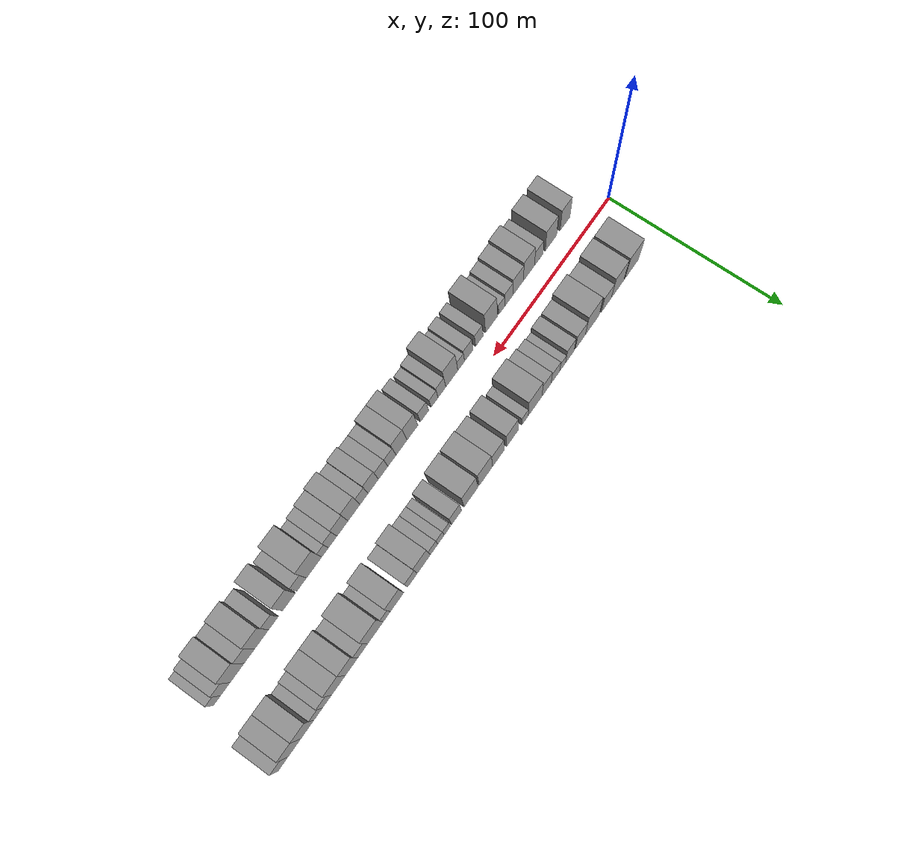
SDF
<sdf version="1.6">
 <world name="default">
  <scene>
   <sky><clouds><speed>12</speed></clouds></sky>
   <ambient>0.4 0.4 0.4 1</ambient>
   <background>0.7 0.7 0.7 1</background>
   <shadows>1</shadows>
  </scene>
  <gravity>0 0 -9.8066</gravity>
  <magnetic_field>6e-06 2.3e-05 -4.2e-05</magnetic_field>
  <physics default="0" name="default_physics" type="ode">
   <ode>
    <solver>
     <type>quick</type>
     <iters>10</iters>
     <sor>1.0</sor>
     <use_dynamic_moi_rescaling>0</use_dynamic_moi_rescaling>
    </solver>
    <constraints>
     <cfm>0</cfm>
     <erp>0.2</erp>
     <contact_max_correcting_vel>100</contact_max_correcting_vel>
     <contact_surface_layer>0.001</contact_surface_layer>
    </constraints>
   </ode>
   <max_step_size>0.004</max_step_size>
   <real_time_factor>1</real_time_factor>
   <real_time_update_rate>250</real_time_update_rate>
  </physics>
  <light name="sun" type="directional">
   <pose>0 0 10 0 0 0</pose>
   <diffuse>0.8 0.8 0.8 1</diffuse>
   <specular>0.2 0.2 0.2 1</specular>
   <attenuation>
    <range>1000</range>
    <constant>0.9</constant>
    <linear>0.01</linear>
    <quadratic>0.001</quadratic>
   </attenuation>
   <direction>-0.5 0.1 -0.9</direction>
  </light>
  <model name="building_1">
   <static>1</static>
   <pose>25.9785 20.0000 0 0.000000 0.000000 1.570796</pose>
   <link name="link">
    <pose>0 0 12.00 0 0 0</pose>
    <collision name="collision"><geometry><box><size>20.0000 11.9569 24.0000</size></box></geometry></collision>
    <visual name="visual">
     <cast_shadows>0</cast_shadows>
     <geometry><box><size>20.0000 11.9569 24.0000</size></box></geometry>
     <material>
      <script>
       <uri>model://grey_wall/materials/scripts</uri>
       <uri>model://grey_wall/materials/textures</uri>
       <name>vrc/grey_wall</name>
      </script>
     </material>
    </visual>
   </link>
  </model>
  <model name="building_2">
   <static>1</static>
   <pose>38.5101 20.0000 0 0.000000 0.000000 1.570796</pose>
   <link name="link">
    <pose>0 0 12.00 0 0 0</pose>
    <collision name="collision"><geometry><box><size>20.0000 11.1064 24.0000</size></box></geometry></collision>
    <visual name="visual">
     <cast_shadows>0</cast_shadows>
     <geometry><box><size>20.0000 11.1064 24.0000</size></box></geometry>
     <material>
      <script>
       <uri>model://grey_wall/materials/scripts</uri>
       <uri>model://grey_wall/materials/textures</uri>
       <name>vrc/grey_wall</name>
      </script>
     </material>
    </visual>
   </link>
  </model>
  <model name="building_3">
   <static>1</static>
   <pose>48.4503 20.0000 0 0.000000 0.000000 1.570796</pose>
   <link name="link">
    <pose>0 0 9.00 0 0 0</pose>
    <collision name="collision"><geometry><box><size>20.0000 8.7741 18.0000</size></box></geometry></collision>
    <visual name="visual">
     <cast_shadows>0</cast_shadows>
     <geometry><box><size>20.0000 8.7741 18.0000</size></box></geometry>
     <material>
      <script>
       <uri>model://grey_wall/materials/scripts</uri>
       <uri>model://grey_wall/materials/textures</uri>
       <name>vrc/grey_wall</name>
      </script>
     </material>
    </visual>
   </link>
  </model>
  <model name="building_4">
   <static>1</static>
   <pose>60.7987 20.0000 0 0.000000 0.000000 1.570796</pose>
   <link name="link">
    <pose>0 0 12.00 0 0 0</pose>
    <collision name="collision"><geometry><box><size>20.0000 11.9227 24.0000</size></box></geometry></collision>
    <visual name="visual">
     <cast_shadows>0</cast_shadows>
     <geometry><box><size>20.0000 11.9227 24.0000</size></box></geometry>
     <material>
      <script>
       <uri>model://grey_wall/materials/scripts</uri>
       <uri>model://grey_wall/materials/textures</uri>
       <name>vrc/grey_wall</name>
      </script>
     </material>
    </visual>
   </link>
  </model>
  <model name="building_5">
   <static>1</static>
   <pose>71.1130 20.0000 0 0.000000 0.000000 1.570796</pose>
   <link name="link">
    <pose>0 0 9.00 0 0 0</pose>
    <collision name="collision"><geometry><box><size>20.0000 8.7057 18.0000</size></box></geometry></collision>
    <visual name="visual">
     <cast_shadows>0</cast_shadows>
     <geometry><box><size>20.0000 8.7057 18.0000</size></box></geometry>
     <material>
      <script>
       <uri>model://grey_wall/materials/scripts</uri>
       <uri>model://grey_wall/materials/textures</uri>
       <name>vrc/grey_wall</name>
      </script>
     </material>
    </visual>
   </link>
  </model>
  <model name="building_6">
   <static>1</static>
   <pose>80.1181 20.0000 0 0.000000 0.000000 1.570796</pose>
   <link name="link">
    <pose>0 0 9.00 0 0 0</pose>
    <collision name="collision"><geometry><box><size>20.0000 7.3044 18.0000</size></box></geometry></collision>
    <visual name="visual">
     <cast_shadows>0</cast_shadows>
     <geometry><box><size>20.0000 7.3044 18.0000</size></box></geometry>
     <material>
      <script>
       <uri>model://grey_wall/materials/scripts</uri>
       <uri>model://grey_wall/materials/textures</uri>
       <name>vrc/grey_wall</name>
      </script>
     </material>
    </visual>
   </link>
  </model>
  <model name="building_7">
   <static>1</static>
   <pose>86.2815 20.0000 0 0.000000 0.000000 1.570796</pose>
   <link name="link">
    <pose>0 0 6.00 0 0 0</pose>
    <collision name="collision"><geometry><box><size>20.0000 5.0225 12.0000</size></box></geometry></collision>
    <visual name="visual">
     <cast_shadows>0</cast_shadows>
     <geometry><box><size>20.0000 5.0225 12.0000</size></box></geometry>
     <material>
      <script>
       <uri>model://grey_wall/materials/scripts</uri>
       <uri>model://grey_wall/materials/textures</uri>
       <name>vrc/grey_wall</name>
      </script>
     </material>
    </visual>
   </link>
  </model>
  <model name="building_8">
   <static>1</static>
   <pose>92.3983 20.0000 0 0.000000 0.000000 1.570796</pose>
   <link name="link">
    <pose>0 0 7.50 0 0 0</pose>
    <collision name="collision"><geometry><box><size>20.0000 7.2111 15.0000</size></box></geometry></collision>
    <visual name="visual">
     <cast_shadows>0</cast_shadows>
     <geometry><box><size>20.0000 7.2111 15.0000</size></box></geometry>
     <material>
      <script>
       <uri>model://grey_wall/materials/scripts</uri>
       <uri>model://grey_wall/materials/textures</uri>
       <name>vrc/grey_wall</name>
      </script>
     </material>
    </visual>
   </link>
  </model>
  <model name="building_9">
   <static>1</static>
   <pose>99.8922 20.0000 0 0.000000 0.000000 1.570796</pose>
   <link name="link">
    <pose>0 0 9.00 0 0 0</pose>
    <collision name="collision"><geometry><box><size>20.0000 7.7767 18.0000</size></box></geometry></collision>
    <visual name="visual">
     <cast_shadows>0</cast_shadows>
     <geometry><box><size>20.0000 7.7767 18.0000</size></box></geometry>
     <material>
      <script>
       <uri>model://grey_wall/materials/scripts</uri>
       <uri>model://grey_wall/materials/textures</uri>
       <name>vrc/grey_wall</name>
      </script>
     </material>
    </visual>
   </link>
  </model>
  <model name="building_10">
   <static>1</static>
   <pose>109.4819 20.0000 0 0.000000 0.000000 1.570796</pose>
   <link name="link">
    <pose>0 0 12.00 0 0 0</pose>
    <collision name="collision"><geometry><box><size>20.0000 11.4029 24.0000</size></box></geometry></collision>
    <visual name="visual">
     <cast_shadows>0</cast_shadows>
     <geometry><box><size>20.0000 11.4029 24.0000</size></box></geometry>
     <material>
      <script>
       <uri>model://grey_wall/materials/scripts</uri>
       <uri>model://grey_wall/materials/textures</uri>
       <name>vrc/grey_wall</name>
      </script>
     </material>
    </visual>
   </link>
  </model>
  <model name="building_11">
   <static>1</static>
   <pose>117.8091 20.0000 0 0.000000 0.000000 1.570796</pose>
   <link name="link">
    <pose>0 0 6.00 0 0 0</pose>
    <collision name="collision"><geometry><box><size>20.0000 5.2514 12.0000</size></box></geometry></collision>
    <visual name="visual">
     <cast_shadows>0</cast_shadows>
     <geometry><box><size>20.0000 5.2514 12.0000</size></box></geometry>
     <material>
      <script>
       <uri>model://grey_wall/materials/scripts</uri>
       <uri>model://grey_wall/materials/textures</uri>
       <name>vrc/grey_wall</name>
      </script>
     </material>
    </visual>
   </link>
  </model>
  <model name="building_12">
   <static>1</static>
   <pose>128.1801 20.0000 0 0.000000 0.000000 1.570796</pose>
   <link name="link">
    <pose>0 0 10.50 0 0 0</pose>
    <collision name="collision"><geometry><box><size>20.0000 9.4906 21.0000</size></box></geometry></collision>
    <visual name="visual">
     <cast_shadows>0</cast_shadows>
     <geometry><box><size>20.0000 9.4906 21.0000</size></box></geometry>
     <material>
      <script>
       <uri>model://grey_wall/materials/scripts</uri>
       <uri>model://grey_wall/materials/textures</uri>
       <name>vrc/grey_wall</name>
      </script>
     </material>
    </visual>
   </link>
  </model>
  <model name="building_13">
   <static>1</static>
   <pose>139.6818 20.0000 0 0.000000 0.000000 1.570796</pose>
   <link name="link">
    <pose>0 0 10.50 0 0 0</pose>
    <collision name="collision"><geometry><box><size>20.0000 9.5127 21.0000</size></box></geometry></collision>
    <visual name="visual">
     <cast_shadows>0</cast_shadows>
     <geometry><box><size>20.0000 9.5127 21.0000</size></box></geometry>
     <material>
      <script>
       <uri>model://grey_wall/materials/scripts</uri>
       <uri>model://grey_wall/materials/textures</uri>
       <name>vrc/grey_wall</name>
      </script>
     </material>
    </visual>
   </link>
  </model>
  <model name="building_14">
   <static>1</static>
   <pose>149.8260 20.0000 0 0.000000 0.000000 1.570796</pose>
   <link name="link">
    <pose>0 0 12.00 0 0 0</pose>
    <collision name="collision"><geometry><box><size>20.0000 10.7758 24.0000</size></box></geometry></collision>
    <visual name="visual">
     <cast_shadows>0</cast_shadows>
     <geometry><box><size>20.0000 10.7758 24.0000</size></box></geometry>
     <material>
      <script>
       <uri>model://grey_wall/materials/scripts</uri>
       <uri>model://grey_wall/materials/textures</uri>
       <name>vrc/grey_wall</name>
      </script>
     </material>
    </visual>
   </link>
  </model>
  <model name="building_15">
   <static>1</static>
   <pose>161.7693 20.0000 0 0.000000 0.000000 1.570796</pose>
   <link name="link">
    <pose>0 0 12.00 0 0 0</pose>
    <collision name="collision"><geometry><box><size>20.0000 11.1109 24.0000</size></box></geometry></collision>
    <visual name="visual">
     <cast_shadows>0</cast_shadows>
     <geometry><box><size>20.0000 11.1109 24.0000</size></box></geometry>
     <material>
      <script>
       <uri>model://grey_wall/materials/scripts</uri>
       <uri>model://grey_wall/materials/textures</uri>
       <name>vrc/grey_wall</name>
      </script>
     </material>
    </visual>
   </link>
  </model>
  <model name="building_16">
   <static>1</static>
   <pose>173.2774 20.0000 0 0.000000 0.000000 1.570796</pose>
   <link name="link">
    <pose>0 0 9.00 0 0 0</pose>
    <collision name="collision"><geometry><box><size>20.0000 7.9053 18.0000</size></box></geometry></collision>
    <visual name="visual">
     <cast_shadows>0</cast_shadows>
     <geometry><box><size>20.0000 7.9053 18.0000</size></box></geometry>
     <material>
      <script>
       <uri>model://grey_wall/materials/scripts</uri>
       <uri>model://grey_wall/materials/textures</uri>
       <name>vrc/grey_wall</name>
      </script>
     </material>
    </visual>
   </link>
  </model>
  <model name="building_17">
   <static>1</static>
   <pose>180.6325 20.0000 0 0.000000 0.000000 1.570796</pose>
   <link name="link">
    <pose>0 0 6.00 0 0 0</pose>
    <collision name="collision"><geometry><box><size>20.0000 4.8050 12.0000</size></box></geometry></collision>
    <visual name="visual">
     <cast_shadows>0</cast_shadows>
     <geometry><box><size>20.0000 4.8050 12.0000</size></box></geometry>
     <material>
      <script>
       <uri>model://grey_wall/materials/scripts</uri>
       <uri>model://grey_wall/materials/textures</uri>
       <name>vrc/grey_wall</name>
      </script>
     </material>
    </visual>
   </link>
  </model>
  <model name="building_18">
   <static>1</static>
   <pose>185.5237 20.0000 0 0.000000 0.000000 1.570796</pose>
   <link name="link">
    <pose>0 0 6.00 0 0 0</pose>
    <collision name="collision"><geometry><box><size>20.0000 4.9772 12.0000</size></box></geometry></collision>
    <visual name="visual">
     <cast_shadows>0</cast_shadows>
     <geometry><box><size>20.0000 4.9772 12.0000</size></box></geometry>
     <material>
      <script>
       <uri>model://grey_wall/materials/scripts</uri>
       <uri>model://grey_wall/materials/textures</uri>
       <name>vrc/grey_wall</name>
      </script>
     </material>
    </visual>
   </link>
  </model>
  <model name="building_19">
   <static>1</static>
   <pose>190.9537 20.0000 0 0.000000 0.000000 1.570796</pose>
   <link name="link">
    <pose>0 0 6.00 0 0 0</pose>
    <collision name="collision"><geometry><box><size>20.0000 5.8828 12.0000</size></box></geometry></collision>
    <visual name="visual">
     <cast_shadows>0</cast_shadows>
     <geometry><box><size>20.0000 5.8828 12.0000</size></box></geometry>
     <material>
      <script>
       <uri>model://grey_wall/materials/scripts</uri>
       <uri>model://grey_wall/materials/textures</uri>
       <name>vrc/grey_wall</name>
      </script>
     </material>
    </visual>
   </link>
  </model>
  <model name="building_20">
   <static>1</static>
   <pose>198.9248 20.0000 0 0.000000 0.000000 1.570796</pose>
   <link name="link">
    <pose>0 0 10.50 0 0 0</pose>
    <collision name="collision"><geometry><box><size>20.0000 10.0593 21.0000</size></box></geometry></collision>
    <visual name="visual">
     <cast_shadows>0</cast_shadows>
     <geometry><box><size>20.0000 10.0593 21.0000</size></box></geometry>
     <material>
      <script>
       <uri>model://grey_wall/materials/scripts</uri>
       <uri>model://grey_wall/materials/textures</uri>
       <name>vrc/grey_wall</name>
      </script>
     </material>
    </visual>
   </link>
  </model>
  <model name="building_21">
   <static>1</static>
   <pose>207.6356 20.0000 0 0.000000 0.000000 1.570796</pose>
   <link name="link">
    <pose>0 0 7.50 0 0 0</pose>
    <collision name="collision"><geometry><box><size>20.0000 7.3625 15.0000</size></box></geometry></collision>
    <visual name="visual">
     <cast_shadows>0</cast_shadows>
     <geometry><box><size>20.0000 7.3625 15.0000</size></box></geometry>
     <material>
      <script>
       <uri>model://grey_wall/materials/scripts</uri>
       <uri>model://grey_wall/materials/textures</uri>
       <name>vrc/grey_wall</name>
      </script>
     </material>
    </visual>
   </link>
  </model>
  <model name="building_22">
   <static>1</static>
   <pose>219.4383 20.0000 0 0.000000 0.000000 1.570796</pose>
   <link name="link">
    <pose>0 0 10.50 0 0 0</pose>
    <collision name="collision"><geometry><box><size>20.0000 10.2429 21.0000</size></box></geometry></collision>
    <visual name="visual">
     <cast_shadows>0</cast_shadows>
     <geometry><box><size>20.0000 10.2429 21.0000</size></box></geometry>
     <material>
      <script>
       <uri>model://grey_wall/materials/scripts</uri>
       <uri>model://grey_wall/materials/textures</uri>
       <name>vrc/grey_wall</name>
      </script>
     </material>
    </visual>
   </link>
  </model>
  <model name="building_23">
   <static>1</static>
   <pose>227.2261 20.0000 0 0.000000 0.000000 1.570796</pose>
   <link name="link">
    <pose>0 0 6.00 0 0 0</pose>
    <collision name="collision"><geometry><box><size>20.0000 5.3326 12.0000</size></box></geometry></collision>
    <visual name="visual">
     <cast_shadows>0</cast_shadows>
     <geometry><box><size>20.0000 5.3326 12.0000</size></box></geometry>
     <material>
      <script>
       <uri>model://grey_wall/materials/scripts</uri>
       <uri>model://grey_wall/materials/textures</uri>
       <name>vrc/grey_wall</name>
      </script>
     </material>
    </visual>
   </link>
  </model>
  <model name="building_24">
   <static>1</static>
   <pose>235.7231 20.0000 0 0.000000 0.000000 1.570796</pose>
   <link name="link">
    <pose>0 0 12.00 0 0 0</pose>
    <collision name="collision"><geometry><box><size>20.0000 11.6614 24.0000</size></box></geometry></collision>
    <visual name="visual">
     <cast_shadows>0</cast_shadows>
     <geometry><box><size>20.0000 11.6614 24.0000</size></box></geometry>
     <material>
      <script>
       <uri>model://grey_wall/materials/scripts</uri>
       <uri>model://grey_wall/materials/textures</uri>
       <name>vrc/grey_wall</name>
      </script>
     </material>
    </visual>
   </link>
  </model>
  <model name="building_25">
   <static>1</static>
   <pose>245.1435 20.0000 0 0.000000 0.000000 1.570796</pose>
   <link name="link">
    <pose>0 0 7.50 0 0 0</pose>
    <collision name="collision"><geometry><box><size>20.0000 7.1794 15.0000</size></box></geometry></collision>
    <visual name="visual">
     <cast_shadows>0</cast_shadows>
     <geometry><box><size>20.0000 7.1794 15.0000</size></box></geometry>
     <material>
      <script>
       <uri>model://grey_wall/materials/scripts</uri>
       <uri>model://grey_wall/materials/textures</uri>
       <name>vrc/grey_wall</name>
      </script>
     </material>
    </visual>
   </link>
  </model>
  <model name="building_26">
   <static>1</static>
   <pose>253.4254 20.0000 0 0.000000 0.000000 1.570796</pose>
   <link name="link">
    <pose>0 0 10.50 0 0 0</pose>
    <collision name="collision"><geometry><box><size>20.0000 9.3844 21.0000</size></box></geometry></collision>
    <visual name="visual">
     <cast_shadows>0</cast_shadows>
     <geometry><box><size>20.0000 9.3844 21.0000</size></box></geometry>
     <material>
      <script>
       <uri>model://grey_wall/materials/scripts</uri>
       <uri>model://grey_wall/materials/textures</uri>
       <name>vrc/grey_wall</name>
      </script>
     </material>
    </visual>
   </link>
  </model>
  <model name="building_27">
   <static>1</static>
   <pose>263.1952 20.0000 0 0.000000 0.000000 1.570796</pose>
   <link name="link">
    <pose>0 0 10.50 0 0 0</pose>
    <collision name="collision"><geometry><box><size>20.0000 10.1553 21.0000</size></box></geometry></collision>
    <visual name="visual">
     <cast_shadows>0</cast_shadows>
     <geometry><box><size>20.0000 10.1553 21.0000</size></box></geometry>
     <material>
      <script>
       <uri>model://grey_wall/materials/scripts</uri>
       <uri>model://grey_wall/materials/textures</uri>
       <name>vrc/grey_wall</name>
      </script>
     </material>
    </visual>
   </link>
  </model>
  <model name="building_28">
   <static>1</static>
   <pose>271.5869 20.0000 0 0.000000 0.000000 1.570796</pose>
   <link name="link">
    <pose>0 0 7.50 0 0 0</pose>
    <collision name="collision"><geometry><box><size>20.0000 6.6281 15.0000</size></box></geometry></collision>
    <visual name="visual">
     <cast_shadows>0</cast_shadows>
     <geometry><box><size>20.0000 6.6281 15.0000</size></box></geometry>
     <material>
      <script>
       <uri>model://grey_wall/materials/scripts</uri>
       <uri>model://grey_wall/materials/textures</uri>
       <name>vrc/grey_wall</name>
      </script>
     </material>
    </visual>
   </link>
  </model>
  <model name="building_29">
   <static>1</static>
   <pose>277.8833 20.0000 0 0.000000 0.000000 1.570796</pose>
   <link name="link">
    <pose>0 0 6.00 0 0 0</pose>
    <collision name="collision"><geometry><box><size>20.0000 5.9647 12.0000</size></box></geometry></collision>
    <visual name="visual">
     <cast_shadows>0</cast_shadows>
     <geometry><box><size>20.0000 5.9647 12.0000</size></box></geometry>
     <material>
      <script>
       <uri>model://grey_wall/materials/scripts</uri>
       <uri>model://grey_wall/materials/textures</uri>
       <name>vrc/grey_wall</name>
      </script>
     </material>
    </visual>
   </link>
  </model>
  <model name="building_30">
   <static>1</static>
   <pose>285.6277 20.0000 0 0.000000 0.000000 1.570796</pose>
   <link name="link">
    <pose>0 0 10.50 0 0 0</pose>
    <collision name="collision"><geometry><box><size>20.0000 9.5241 21.0000</size></box></geometry></collision>
    <visual name="visual">
     <cast_shadows>0</cast_shadows>
     <geometry><box><size>20.0000 9.5241 21.0000</size></box></geometry>
     <material>
      <script>
       <uri>model://grey_wall/materials/scripts</uri>
       <uri>model://grey_wall/materials/textures</uri>
       <name>vrc/grey_wall</name>
      </script>
     </material>
    </visual>
   </link>
  </model>
  <model name="building_31">
   <static>1</static>
   <pose>294.9660 20.0000 0 0.000000 0.000000 1.570796</pose>
   <link name="link">
    <pose>0 0 10.50 0 0 0</pose>
    <collision name="collision"><geometry><box><size>20.0000 9.1525 21.0000</size></box></geometry></collision>
    <visual name="visual">
     <cast_shadows>0</cast_shadows>
     <geometry><box><size>20.0000 9.1525 21.0000</size></box></geometry>
     <material>
      <script>
       <uri>model://grey_wall/materials/scripts</uri>
       <uri>model://grey_wall/materials/textures</uri>
       <name>vrc/grey_wall</name>
      </script>
     </material>
    </visual>
   </link>
  </model>
  <model name="building_32">
   <static>1</static>
   <pose>303.0632 20.0000 0 0.000000 0.000000 1.570796</pose>
   <link name="link">
    <pose>0 0 7.50 0 0 0</pose>
    <collision name="collision"><geometry><box><size>20.0000 7.0419 15.0000</size></box></geometry></collision>
    <visual name="visual">
     <cast_shadows>0</cast_shadows>
     <geometry><box><size>20.0000 7.0419 15.0000</size></box></geometry>
     <material>
      <script>
       <uri>model://grey_wall/materials/scripts</uri>
       <uri>model://grey_wall/materials/textures</uri>
       <name>vrc/grey_wall</name>
      </script>
     </material>
    </visual>
   </link>
  </model>
  <model name="building_33">
   <static>1</static>
   <pose>24.3545 -20.0000 0 0.000000 0.000000 1.570796</pose>
   <link name="link">
    <pose>0 0 10.50 0 0 0</pose>
    <collision name="collision"><geometry><box><size>20.0000 8.7090 21.0000</size></box></geometry></collision>
    <visual name="visual">
     <cast_shadows>0</cast_shadows>
     <geometry><box><size>20.0000 8.7090 21.0000</size></box></geometry>
     <material>
      <script>
       <uri>model://grey_wall/materials/scripts</uri>
       <uri>model://grey_wall/materials/textures</uri>
       <name>vrc/grey_wall</name>
      </script>
     </material>
    </visual>
   </link>
  </model>
  <model name="building_34">
   <static>1</static>
   <pose>36.6917 -20.0000 0 0.000000 0.000000 1.570796</pose>
   <link name="link">
    <pose>0 0 10.50 0 0 0</pose>
    <collision name="collision"><geometry><box><size>20.0000 9.9654 21.0000</size></box></geometry></collision>
    <visual name="visual">
     <cast_shadows>0</cast_shadows>
     <geometry><box><size>20.0000 9.9654 21.0000</size></box></geometry>
     <material>
      <script>
       <uri>model://grey_wall/materials/scripts</uri>
       <uri>model://grey_wall/materials/textures</uri>
       <name>vrc/grey_wall</name>
      </script>
     </material>
    </visual>
   </link>
  </model>
  <model name="building_35">
   <static>1</static>
   <pose>47.3037 -20.0000 0 0.000000 0.000000 1.570796</pose>
   <link name="link">
    <pose>0 0 7.50 0 0 0</pose>
    <collision name="collision"><geometry><box><size>20.0000 7.2587 15.0000</size></box></geometry></collision>
    <visual name="visual">
     <cast_shadows>0</cast_shadows>
     <geometry><box><size>20.0000 7.2587 15.0000</size></box></geometry>
     <material>
      <script>
       <uri>model://grey_wall/materials/scripts</uri>
       <uri>model://grey_wall/materials/textures</uri>
       <name>vrc/grey_wall</name>
      </script>
     </material>
    </visual>
   </link>
  </model>
  <model name="building_36">
   <static>1</static>
   <pose>55.6943 -20.0000 0 0.000000 0.000000 1.570796</pose>
   <link name="link">
    <pose>0 0 10.50 0 0 0</pose>
    <collision name="collision"><geometry><box><size>20.0000 9.5226 21.0000</size></box></geometry></collision>
    <visual name="visual">
     <cast_shadows>0</cast_shadows>
     <geometry><box><size>20.0000 9.5226 21.0000</size></box></geometry>
     <material>
      <script>
       <uri>model://grey_wall/materials/scripts</uri>
       <uri>model://grey_wall/materials/textures</uri>
       <name>vrc/grey_wall</name>
      </script>
     </material>
    </visual>
   </link>
  </model>
  <model name="building_37">
   <static>1</static>
   <pose>64.8695 -20.0000 0 0.000000 0.000000 1.570796</pose>
   <link name="link">
    <pose>0 0 9.00 0 0 0</pose>
    <collision name="collision"><geometry><box><size>20.0000 8.8278 18.0000</size></box></geometry></collision>
    <visual name="visual">
     <cast_shadows>0</cast_shadows>
     <geometry><box><size>20.0000 8.8278 18.0000</size></box></geometry>
     <material>
      <script>
       <uri>model://grey_wall/materials/scripts</uri>
       <uri>model://grey_wall/materials/textures</uri>
       <name>vrc/grey_wall</name>
      </script>
     </material>
    </visual>
   </link>
  </model>
  <model name="building_38">
   <static>1</static>
   <pose>72.8597 -20.0000 0 0.000000 0.000000 1.570796</pose>
   <link name="link">
    <pose>0 0 7.50 0 0 0</pose>
    <collision name="collision"><geometry><box><size>20.0000 7.1525 15.0000</size></box></geometry></collision>
    <visual name="visual">
     <cast_shadows>0</cast_shadows>
     <geometry><box><size>20.0000 7.1525 15.0000</size></box></geometry>
     <material>
      <script>
       <uri>model://grey_wall/materials/scripts</uri>
       <uri>model://grey_wall/materials/textures</uri>
       <name>vrc/grey_wall</name>
      </script>
     </material>
    </visual>
   </link>
  </model>
  <model name="building_39">
   <static>1</static>
   <pose>79.0361 -20.0000 0 0.000000 0.000000 1.570796</pose>
   <link name="link">
    <pose>0 0 6.00 0 0 0</pose>
    <collision name="collision"><geometry><box><size>20.0000 5.2004 12.0000</size></box></geometry></collision>
    <visual name="visual">
     <cast_shadows>0</cast_shadows>
     <geometry><box><size>20.0000 5.2004 12.0000</size></box></geometry>
     <material>
      <script>
       <uri>model://grey_wall/materials/scripts</uri>
       <uri>model://grey_wall/materials/textures</uri>
       <name>vrc/grey_wall</name>
      </script>
     </material>
    </visual>
   </link>
  </model>
  <model name="building_40">
   <static>1</static>
   <pose>87.6937 -20.0000 0 0.000000 0.000000 1.570796</pose>
   <link name="link">
    <pose>0 0 12.00 0 0 0</pose>
    <collision name="collision"><geometry><box><size>20.0000 10.1148 24.0000</size></box></geometry></collision>
    <visual name="visual">
     <cast_shadows>0</cast_shadows>
     <geometry><box><size>20.0000 10.1148 24.0000</size></box></geometry>
     <material>
      <script>
       <uri>model://grey_wall/materials/scripts</uri>
       <uri>model://grey_wall/materials/textures</uri>
       <name>vrc/grey_wall</name>
      </script>
     </material>
    </visual>
   </link>
  </model>
  <model name="building_41">
   <static>1</static>
   <pose>97.8980 -20.0000 0 0.000000 0.000000 1.570796</pose>
   <link name="link">
    <pose>0 0 7.50 0 0 0</pose>
    <collision name="collision"><geometry><box><size>20.0000 6.2938 15.0000</size></box></geometry></collision>
    <visual name="visual">
     <cast_shadows>0</cast_shadows>
     <geometry><box><size>20.0000 6.2938 15.0000</size></box></geometry>
     <material>
      <script>
       <uri>model://grey_wall/materials/scripts</uri>
       <uri>model://grey_wall/materials/textures</uri>
       <name>vrc/grey_wall</name>
      </script>
     </material>
    </visual>
   </link>
  </model>
  <model name="building_42">
   <static>1</static>
   <pose>106.5846 -20.0000 0 0.000000 0.000000 1.570796</pose>
   <link name="link">
    <pose>0 0 7.50 0 0 0</pose>
    <collision name="collision"><geometry><box><size>20.0000 7.0794 15.0000</size></box></geometry></collision>
    <visual name="visual">
     <cast_shadows>0</cast_shadows>
     <geometry><box><size>20.0000 7.0794 15.0000</size></box></geometry>
     <material>
      <script>
       <uri>model://grey_wall/materials/scripts</uri>
       <uri>model://grey_wall/materials/textures</uri>
       <name>vrc/grey_wall</name>
      </script>
     </material>
    </visual>
   </link>
  </model>
  <model name="building_43">
   <static>1</static>
   <pose>112.8715 -20.0000 0 0.000000 0.000000 1.570796</pose>
   <link name="link">
    <pose>0 0 6.00 0 0 0</pose>
    <collision name="collision"><geometry><box><size>20.0000 5.4944 12.0000</size></box></geometry></collision>
    <visual name="visual">
     <cast_shadows>0</cast_shadows>
     <geometry><box><size>20.0000 5.4944 12.0000</size></box></geometry>
     <material>
      <script>
       <uri>model://grey_wall/materials/scripts</uri>
       <uri>model://grey_wall/materials/textures</uri>
       <name>vrc/grey_wall</name>
      </script>
     </material>
    </visual>
   </link>
  </model>
  <model name="building_44">
   <static>1</static>
   <pose>120.5231 -20.0000 0 0.000000 0.000000 1.570796</pose>
   <link name="link">
    <pose>0 0 12.00 0 0 0</pose>
    <collision name="collision"><geometry><box><size>20.0000 9.8087 24.0000</size></box></geometry></collision>
    <visual name="visual">
     <cast_shadows>0</cast_shadows>
     <geometry><box><size>20.0000 9.8087 24.0000</size></box></geometry>
     <material>
      <script>
       <uri>model://grey_wall/materials/scripts</uri>
       <uri>model://grey_wall/materials/textures</uri>
       <name>vrc/grey_wall</name>
      </script>
     </material>
    </visual>
   </link>
  </model>
  <model name="building_45">
   <static>1</static>
   <pose>128.6165 -20.0000 0 0.000000 0.000000 1.570796</pose>
   <link name="link">
    <pose>0 0 7.50 0 0 0</pose>
    <collision name="collision"><geometry><box><size>20.0000 6.3780 15.0000</size></box></geometry></collision>
    <visual name="visual">
     <cast_shadows>0</cast_shadows>
     <geometry><box><size>20.0000 6.3780 15.0000</size></box></geometry>
     <material>
      <script>
       <uri>model://grey_wall/materials/scripts</uri>
       <uri>model://grey_wall/materials/textures</uri>
       <name>vrc/grey_wall</name>
      </script>
     </material>
    </visual>
   </link>
  </model>
  <model name="building_46">
   <static>1</static>
   <pose>134.6094 -20.0000 0 0.000000 0.000000 1.570796</pose>
   <link name="link">
    <pose>0 0 6.00 0 0 0</pose>
    <collision name="collision"><geometry><box><size>20.0000 5.6079 12.0000</size></box></geometry></collision>
    <visual name="visual">
     <cast_shadows>0</cast_shadows>
     <geometry><box><size>20.0000 5.6079 12.0000</size></box></geometry>
     <material>
      <script>
       <uri>model://grey_wall/materials/scripts</uri>
       <uri>model://grey_wall/materials/textures</uri>
       <name>vrc/grey_wall</name>
      </script>
     </material>
    </visual>
   </link>
  </model>
  <model name="building_47">
   <static>1</static>
   <pose>142.7290 -20.0000 0 0.000000 0.000000 1.570796</pose>
   <link name="link">
    <pose>0 0 7.50 0 0 0</pose>
    <collision name="collision"><geometry><box><size>20.0000 6.6313 15.0000</size></box></geometry></collision>
    <visual name="visual">
     <cast_shadows>0</cast_shadows>
     <geometry><box><size>20.0000 6.6313 15.0000</size></box></geometry>
     <material>
      <script>
       <uri>model://grey_wall/materials/scripts</uri>
       <uri>model://grey_wall/materials/textures</uri>
       <name>vrc/grey_wall</name>
      </script>
     </material>
    </visual>
   </link>
  </model>
  <model name="building_48">
   <static>1</static>
   <pose>152.3671 -20.0000 0 0.000000 0.000000 1.570796</pose>
   <link name="link">
    <pose>0 0 10.50 0 0 0</pose>
    <collision name="collision"><geometry><box><size>20.0000 8.6448 21.0000</size></box></geometry></collision>
    <visual name="visual">
     <cast_shadows>0</cast_shadows>
     <geometry><box><size>20.0000 8.6448 21.0000</size></box></geometry>
     <material>
      <script>
       <uri>model://grey_wall/materials/scripts</uri>
       <uri>model://grey_wall/materials/textures</uri>
       <name>vrc/grey_wall</name>
      </script>
     </material>
    </visual>
   </link>
  </model>
  <model name="building_49">
   <static>1</static>
   <pose>161.0333 -20.0000 0 0.000000 0.000000 1.570796</pose>
   <link name="link">
    <pose>0 0 10.50 0 0 0</pose>
    <collision name="collision"><geometry><box><size>20.0000 8.6876 21.0000</size></box></geometry></collision>
    <visual name="visual">
     <cast_shadows>0</cast_shadows>
     <geometry><box><size>20.0000 8.6876 21.0000</size></box></geometry>
     <material>
      <script>
       <uri>model://grey_wall/materials/scripts</uri>
       <uri>model://grey_wall/materials/textures</uri>
       <name>vrc/grey_wall</name>
      </script>
     </material>
    </visual>
   </link>
  </model>
  <model name="building_50">
   <static>1</static>
   <pose>168.5839 -20.0000 0 0.000000 0.000000 1.570796</pose>
   <link name="link">
    <pose>0 0 7.50 0 0 0</pose>
    <collision name="collision"><geometry><box><size>20.0000 6.4135 15.0000</size></box></geometry></collision>
    <visual name="visual">
     <cast_shadows>0</cast_shadows>
     <geometry><box><size>20.0000 6.4135 15.0000</size></box></geometry>
     <material>
      <script>
       <uri>model://grey_wall/materials/scripts</uri>
       <uri>model://grey_wall/materials/textures</uri>
       <name>vrc/grey_wall</name>
      </script>
     </material>
    </visual>
   </link>
  </model>
  <model name="building_51">
   <static>1</static>
   <pose>175.4303 -20.0000 0 0.000000 0.000000 1.570796</pose>
   <link name="link">
    <pose>0 0 7.50 0 0 0</pose>
    <collision name="collision"><geometry><box><size>20.0000 7.2793 15.0000</size></box></geometry></collision>
    <visual name="visual">
     <cast_shadows>0</cast_shadows>
     <geometry><box><size>20.0000 7.2793 15.0000</size></box></geometry>
     <material>
      <script>
       <uri>model://grey_wall/materials/scripts</uri>
       <uri>model://grey_wall/materials/textures</uri>
       <name>vrc/grey_wall</name>
      </script>
     </material>
    </visual>
   </link>
  </model>
  <model name="building_52">
   <static>1</static>
   <pose>183.0782 -20.0000 0 0.000000 0.000000 1.570796</pose>
   <link name="link">
    <pose>0 0 9.00 0 0 0</pose>
    <collision name="collision"><geometry><box><size>20.0000 8.0164 18.0000</size></box></geometry></collision>
    <visual name="visual">
     <cast_shadows>0</cast_shadows>
     <geometry><box><size>20.0000 8.0164 18.0000</size></box></geometry>
     <material>
      <script>
       <uri>model://grey_wall/materials/scripts</uri>
       <uri>model://grey_wall/materials/textures</uri>
       <name>vrc/grey_wall</name>
      </script>
     </material>
    </visual>
   </link>
  </model>
  <model name="building_53">
   <static>1</static>
   <pose>190.2061 -20.0000 0 0.000000 0.000000 1.570796</pose>
   <link name="link">
    <pose>0 0 7.50 0 0 0</pose>
    <collision name="collision"><geometry><box><size>20.0000 6.2394 15.0000</size></box></geometry></collision>
    <visual name="visual">
     <cast_shadows>0</cast_shadows>
     <geometry><box><size>20.0000 6.2394 15.0000</size></box></geometry>
     <material>
      <script>
       <uri>model://grey_wall/materials/scripts</uri>
       <uri>model://grey_wall/materials/textures</uri>
       <name>vrc/grey_wall</name>
      </script>
     </material>
    </visual>
   </link>
  </model>
  <model name="building_54">
   <static>1</static>
   <pose>197.9673 -20.0000 0 0.000000 0.000000 1.570796</pose>
   <link name="link">
    <pose>0 0 10.50 0 0 0</pose>
    <collision name="collision"><geometry><box><size>20.0000 9.2831 21.0000</size></box></geometry></collision>
    <visual name="visual">
     <cast_shadows>0</cast_shadows>
     <geometry><box><size>20.0000 9.2831 21.0000</size></box></geometry>
     <material>
      <script>
       <uri>model://grey_wall/materials/scripts</uri>
       <uri>model://grey_wall/materials/textures</uri>
       <name>vrc/grey_wall</name>
      </script>
     </material>
    </visual>
   </link>
  </model>
  <model name="building_55">
   <static>1</static>
   <pose>206.8067 -20.0000 0 0.000000 0.000000 1.570796</pose>
   <link name="link">
    <pose>0 0 9.00 0 0 0</pose>
    <collision name="collision"><geometry><box><size>20.0000 8.3957 18.0000</size></box></geometry></collision>
    <visual name="visual">
     <cast_shadows>0</cast_shadows>
     <geometry><box><size>20.0000 8.3957 18.0000</size></box></geometry>
     <material>
      <script>
       <uri>model://grey_wall/materials/scripts</uri>
       <uri>model://grey_wall/materials/textures</uri>
       <name>vrc/grey_wall</name>
      </script>
     </material>
    </visual>
   </link>
  </model>
  <model name="building_56">
   <static>1</static>
   <pose>214.2137 -20.0000 0 0.000000 0.000000 1.570796</pose>
   <link name="link">
    <pose>0 0 7.50 0 0 0</pose>
    <collision name="collision"><geometry><box><size>20.0000 6.4182 15.0000</size></box></geometry></collision>
    <visual name="visual">
     <cast_shadows>0</cast_shadows>
     <geometry><box><size>20.0000 6.4182 15.0000</size></box></geometry>
     <material>
      <script>
       <uri>model://grey_wall/materials/scripts</uri>
       <uri>model://grey_wall/materials/textures</uri>
       <name>vrc/grey_wall</name>
      </script>
     </material>
    </visual>
   </link>
  </model>
  <model name="building_57">
   <static>1</static>
   <pose>219.9508 -20.0000 0 0.000000 0.000000 1.570796</pose>
   <link name="link">
    <pose>0 0 6.00 0 0 0</pose>
    <collision name="collision"><geometry><box><size>20.0000 5.0561 12.0000</size></box></geometry></collision>
    <visual name="visual">
     <cast_shadows>0</cast_shadows>
     <geometry><box><size>20.0000 5.0561 12.0000</size></box></geometry>
     <material>
      <script>
       <uri>model://grey_wall/materials/scripts</uri>
       <uri>model://grey_wall/materials/textures</uri>
       <name>vrc/grey_wall</name>
      </script>
     </material>
    </visual>
   </link>
  </model>
  <model name="building_58">
   <static>1</static>
   <pose>228.2006 -20.0000 0 0.000000 0.000000 1.570796</pose>
   <link name="link">
    <pose>0 0 12.00 0 0 0</pose>
    <collision name="collision"><geometry><box><size>20.0000 11.4434 24.0000</size></box></geometry></collision>
    <visual name="visual">
     <cast_shadows>0</cast_shadows>
     <geometry><box><size>20.0000 11.4434 24.0000</size></box></geometry>
     <material>
      <script>
       <uri>model://grey_wall/materials/scripts</uri>
       <uri>model://grey_wall/materials/textures</uri>
       <name>vrc/grey_wall</name>
      </script>
     </material>
    </visual>
   </link>
  </model>
  <model name="building_59">
   <static>1</static>
   <pose>237.4774 -20.0000 0 0.000000 0.000000 1.570796</pose>
   <link name="link">
    <pose>0 0 7.50 0 0 0</pose>
    <collision name="collision"><geometry><box><size>20.0000 7.1101 15.0000</size></box></geometry></collision>
    <visual name="visual">
     <cast_shadows>0</cast_shadows>
     <geometry><box><size>20.0000 7.1101 15.0000</size></box></geometry>
     <material>
      <script>
       <uri>model://grey_wall/materials/scripts</uri>
       <uri>model://grey_wall/materials/textures</uri>
       <name>vrc/grey_wall</name>
      </script>
     </material>
    </visual>
   </link>
  </model>
  <model name="building_60">
   <static>1</static>
   <pose>246.7958 -20.0000 0 0.000000 0.000000 1.570796</pose>
   <link name="link">
    <pose>0 0 10.50 0 0 0</pose>
    <collision name="collision"><geometry><box><size>20.0000 9.5267 21.0000</size></box></geometry></collision>
    <visual name="visual">
     <cast_shadows>0</cast_shadows>
     <geometry><box><size>20.0000 9.5267 21.0000</size></box></geometry>
     <material>
      <script>
       <uri>model://grey_wall/materials/scripts</uri>
       <uri>model://grey_wall/materials/textures</uri>
       <name>vrc/grey_wall</name>
      </script>
     </material>
    </visual>
   </link>
  </model>
  <model name="building_61">
   <static>1</static>
   <pose>258.0478 -20.0000 0 0.000000 0.000000 1.570796</pose>
   <link name="link">
    <pose>0 0 7.50 0 0 0</pose>
    <collision name="collision"><geometry><box><size>20.0000 6.9773 15.0000</size></box></geometry></collision>
    <visual name="visual">
     <cast_shadows>0</cast_shadows>
     <geometry><box><size>20.0000 6.9773 15.0000</size></box></geometry>
     <material>
      <script>
       <uri>model://grey_wall/materials/scripts</uri>
       <uri>model://grey_wall/materials/textures</uri>
       <name>vrc/grey_wall</name>
      </script>
     </material>
    </visual>
   </link>
  </model>
  <model name="building_62">
   <static>1</static>
   <pose>266.7152 -20.0000 0 0.000000 0.000000 1.570796</pose>
   <link name="link">
    <pose>0 0 10.50 0 0 0</pose>
    <collision name="collision"><geometry><box><size>20.0000 10.3575 21.0000</size></box></geometry></collision>
    <visual name="visual">
     <cast_shadows>0</cast_shadows>
     <geometry><box><size>20.0000 10.3575 21.0000</size></box></geometry>
     <material>
      <script>
       <uri>model://grey_wall/materials/scripts</uri>
       <uri>model://grey_wall/materials/textures</uri>
       <name>vrc/grey_wall</name>
      </script>
     </material>
    </visual>
   </link>
  </model>
  <model name="building_63">
   <static>1</static>
   <pose>275.6008 -20.0000 0 0.000000 0.000000 1.570796</pose>
   <link name="link">
    <pose>0 0 9.00 0 0 0</pose>
    <collision name="collision"><geometry><box><size>20.0000 7.4138 18.0000</size></box></geometry></collision>
    <visual name="visual">
     <cast_shadows>0</cast_shadows>
     <geometry><box><size>20.0000 7.4138 18.0000</size></box></geometry>
     <material>
      <script>
       <uri>model://grey_wall/materials/scripts</uri>
       <uri>model://grey_wall/materials/textures</uri>
       <name>vrc/grey_wall</name>
      </script>
     </material>
    </visual>
   </link>
  </model>
  <model name="building_64">
   <static>1</static>
   <pose>284.2835 -20.0000 0 0.000000 0.000000 1.570796</pose>
   <link name="link">
    <pose>0 0 10.50 0 0 0</pose>
    <collision name="collision"><geometry><box><size>20.0000 9.9515 21.0000</size></box></geometry></collision>
    <visual name="visual">
     <cast_shadows>0</cast_shadows>
     <geometry><box><size>20.0000 9.9515 21.0000</size></box></geometry>
     <material>
      <script>
       <uri>model://grey_wall/materials/scripts</uri>
       <uri>model://grey_wall/materials/textures</uri>
       <name>vrc/grey_wall</name>
      </script>
     </material>
    </visual>
   </link>
  </model>
  <model name="building_65">
   <static>1</static>
   <pose>292.6617 -20.0000 0 0.000000 0.000000 1.570796</pose>
   <link name="link">
    <pose>0 0 7.50 0 0 0</pose>
    <collision name="collision"><geometry><box><size>20.0000 6.8050 15.0000</size></box></geometry></collision>
    <visual name="visual">
     <cast_shadows>0</cast_shadows>
     <geometry><box><size>20.0000 6.8050 15.0000</size></box></geometry>
     <material>
      <script>
       <uri>model://grey_wall/materials/scripts</uri>
       <uri>model://grey_wall/materials/textures</uri>
       <name>vrc/grey_wall</name>
      </script>
     </material>
    </visual>
   </link>
  </model>
  <model name="building_66">
   <static>1</static>
   <pose>298.5239 -20.0000 0 0.000000 0.000000 1.570796</pose>
   <link name="link">
    <pose>0 0 6.00 0 0 0</pose>
    <collision name="collision"><geometry><box><size>20.0000 4.9195 12.0000</size></box></geometry></collision>
    <visual name="visual">
     <cast_shadows>0</cast_shadows>
     <geometry><box><size>20.0000 4.9195 12.0000</size></box></geometry>
     <material>
      <script>
       <uri>model://grey_wall/materials/scripts</uri>
       <uri>model://grey_wall/materials/textures</uri>
       <name>vrc/grey_wall</name>
      </script>
     </material>
    </visual>
   </link>
  </model>
 </world>
</sdf>
